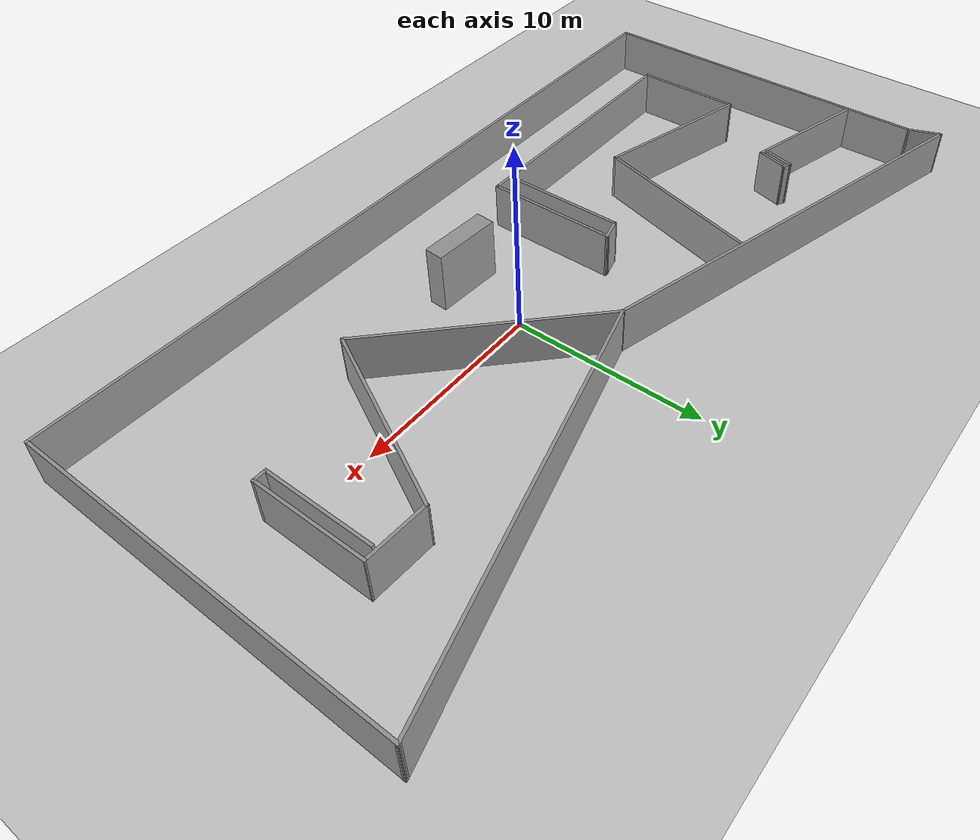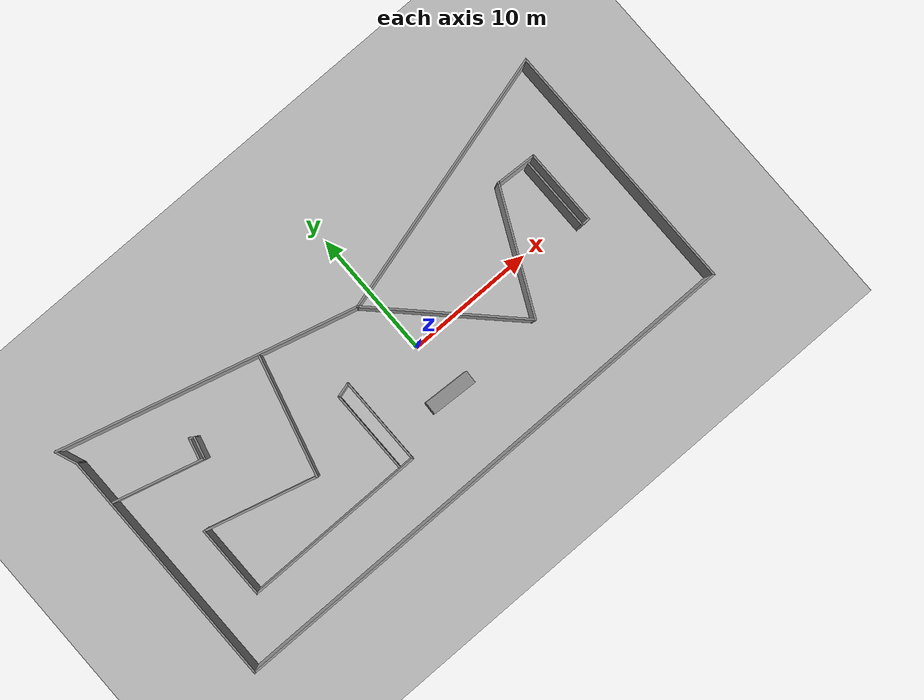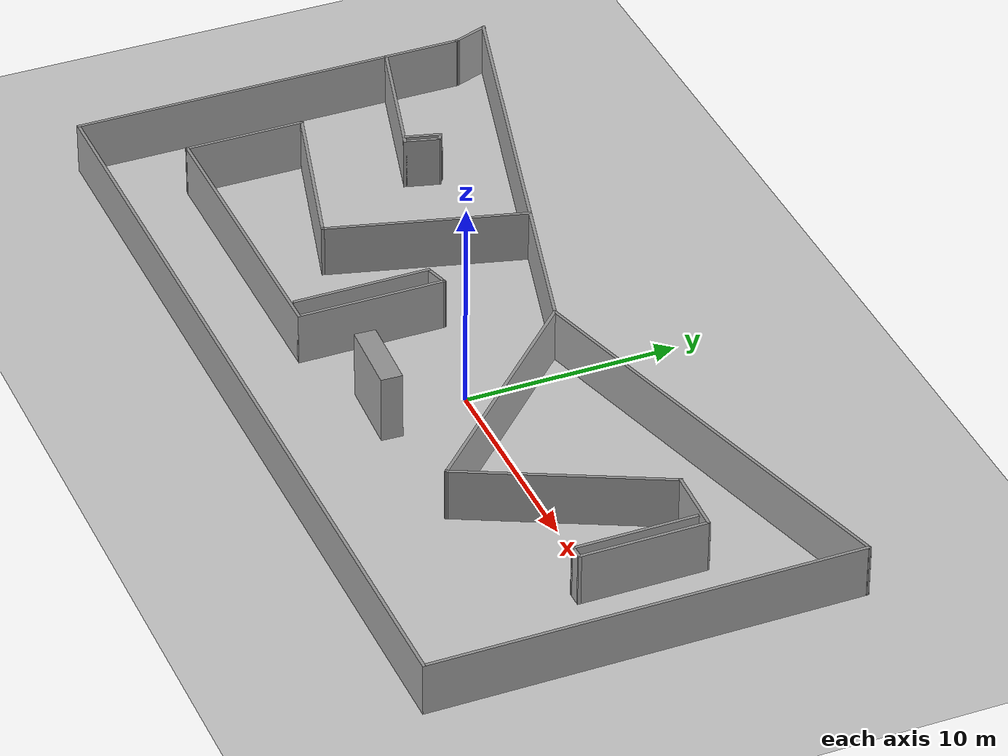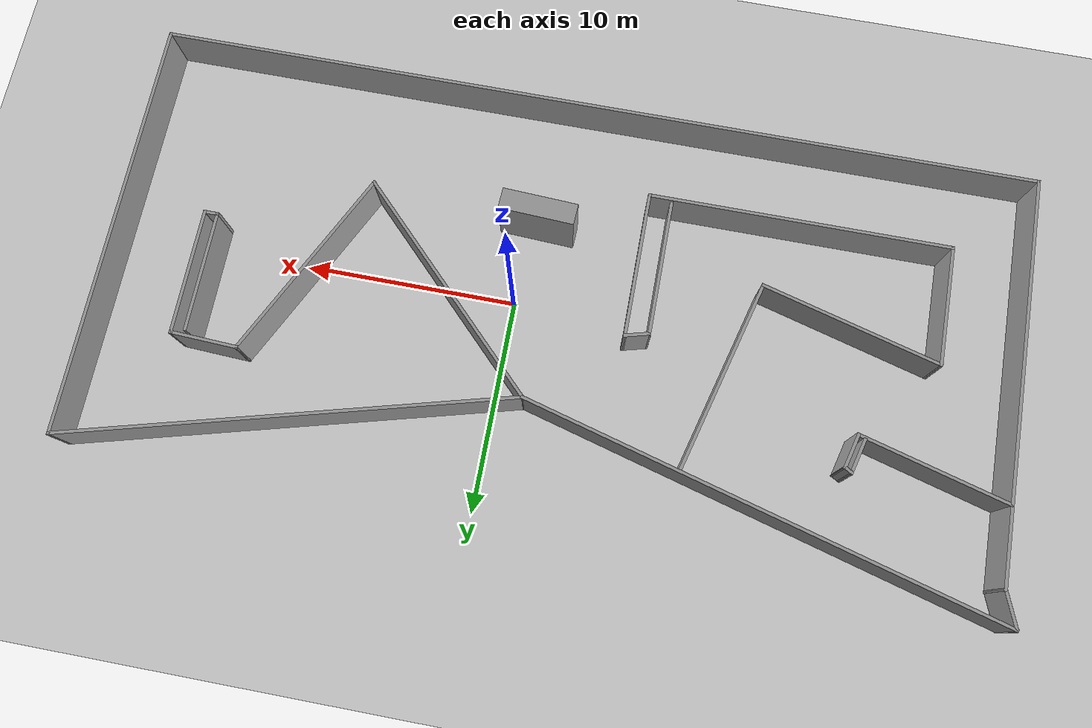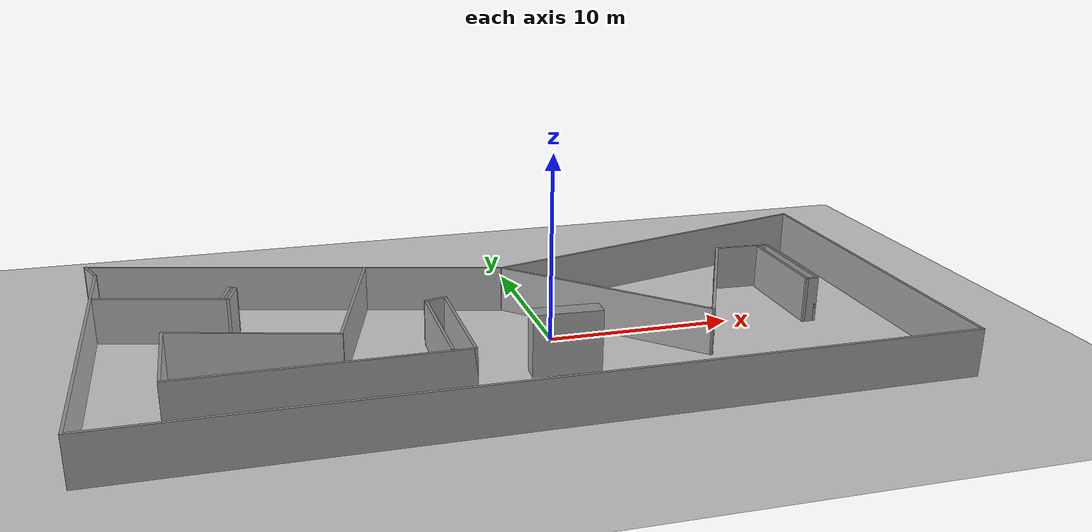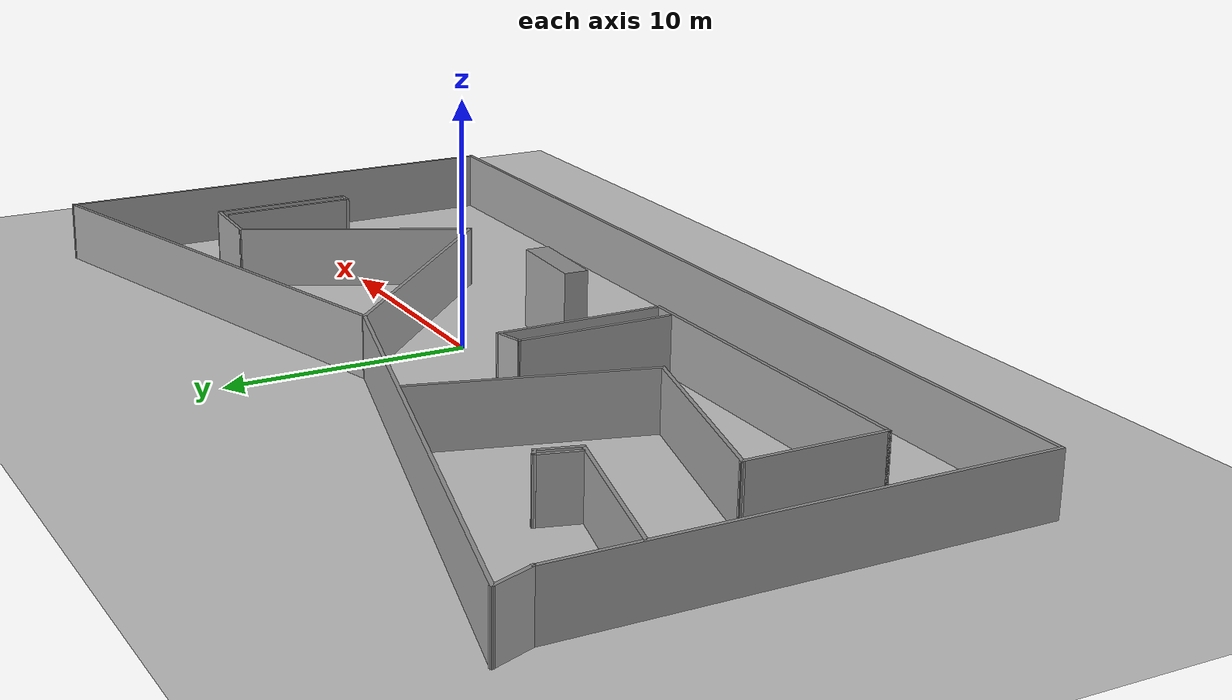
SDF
<sdf version="1.7">
 <world name="default">
  <light name="sun" type="directional">
   <pose>0 0 10 0 -0 0</pose>
   <diffuse>0.8 0.8 0.8 1</diffuse>
   <specular>0.2 0.2 0.2 1</specular>
   <attenuation>
    <range>1000</range>
    <constant>0.9</constant>
    <linear>0.01</linear>
    <quadratic>0.001</quadratic>
   </attenuation>
   <direction>-0.5 0.1 -0.9</direction>
   <spot><inner_angle>0</inner_angle><outer_angle>0</outer_angle><falloff>0</falloff></spot>
  </light>
  <model name="ground_plane">
   <static>1</static>
   <link name="link">
    <collision name="collision">
     <geometry><plane><normal>0 0 1</normal><size>100 100</size></plane></geometry>
     <surface><friction><ode><mu>100</mu><mu2>50</mu2></ode></friction></surface>
    </collision>
    <visual name="visual">
     <cast_shadows>0</cast_shadows>
     <geometry><plane><normal>0 0 1</normal><size>100 100</size></plane></geometry>
     <material>
      <script><uri>file://media/materials/scripts/gazebo.material</uri><name>Gazebo/Grey</name></script>
     </material>
    </visual>
   </link>
  </model>
  <gravity>0 0 -9.8</gravity>
  <magnetic_field>6e-06 2.3e-05 -4.2e-05</magnetic_field>
  <atmosphere type="adiabatic"/>
  <physics type="ode">
   <max_step_size>0.001</max_step_size>
   <real_time_factor>1</real_time_factor>
   <real_time_update_rate>1000</real_time_update_rate>
  </physics>
  <scene><ambient>0.4 0.4 0.4 1</ambient><background>0.7 0.7 0.7 1</background><shadows>1</shadows></scene>
  <spherical_coordinates>
   <surface_model>EARTH_WGS84</surface_model>
   <latitude_deg>0</latitude_deg>
   <longitude_deg>0</longitude_deg>
   <elevation>0</elevation>
   <heading_deg>0</heading_deg>
  </spherical_coordinates>
  <model name="test_house">
   <pose>-2.48412 0.574929 0 0 -0 0</pose>
   <link name="Wall_0">
    <collision name="Wall_0_Collision">
     <geometry><box><size>19 0.15 2.5</size></box></geometry>
     <pose>0 0 1.25 0 -0 0</pose>
    </collision>
    <visual name="Wall_0_Visual">
     <pose>0 0 1.25 0 -0 0</pose>
     <geometry><box><size>19 0.15 2.5</size></box></geometry>
     <material>
      <script><uri>file://media/materials/scripts/gazebo.material</uri><name>Gazebo/Grey</name></script>
      <ambient>1 1 1 1</ambient>
     </material>
     <meta><layer>0</layer></meta>
    </visual>
    <pose>-20.6213 -0.80206 0 0 -0 -1.5708</pose>
   </link>
   <link name="Wall_1">
    <collision name="Wall_1_Collision">
     <geometry><box><size>42 0.15 2.5</size></box></geometry>
     <pose>0 0 1.25 0 -0 0</pose>
    </collision>
    <visual name="Wall_1_Visual">
     <pose>0 0 1.25 0 -0 0</pose>
     <geometry><box><size>42 0.15 2.5</size></box></geometry>
     <material>
      <script><uri>file://media/materials/scripts/gazebo.material</uri><name>Gazebo/Grey</name></script>
      <ambient>1 1 1 1</ambient>
     </material>
     <meta><layer>0</layer></meta>
    </visual>
    <pose>0.30368 -10.2271 0 0 -0 0</pose>
   </link>
   <link name="Wall_10">
    <collision name="Wall_10_Collision">
     <geometry><box><size>9.5 0.15 2.5</size></box></geometry>
     <pose>0 0 1.25 0 -0 0</pose>
    </collision>
    <visual name="Wall_10_Visual">
     <pose>0 0 1.25 0 -0 0</pose>
     <geometry><box><size>9.5 0.15 2.5</size></box></geometry>
     <material>
      <script><uri>file://media/materials/scripts/gazebo.material</uri><name>Gazebo/Grey</name></script>
      <ambient>1 1 1 1</ambient>
     </material>
     <meta><layer>0</layer></meta>
    </visual>
    <pose>-7.48297 1.65347 0 0 -0 -1.8326</pose>
   </link>
   <link name="Wall_11">
    <collision name="Wall_11_Collision">
     <geometry><box><size>8.75 0.15 2.5</size></box></geometry>
     <pose>0 0 1.25 0 -0 0</pose>
    </collision>
    <visual name="Wall_11_Visual">
     <pose>0 0 1.25 0 -0 0</pose>
     <geometry><box><size>8.75 0.15 2.5</size></box></geometry>
     <material>
      <script><uri>file://media/materials/scripts/gazebo.material</uri><name>Gazebo/Grey</name></script>
      <ambient>1 1 1 1</ambient>
     </material>
     <meta><layer>0</layer></meta>
    </visual>
    <pose>-12.8464 -1.74931 0 0 -0 2.87979</pose>
   </link>
   <link name="Wall_12">
    <collision name="Wall_12_Collision">
     <geometry><box><size>5.75 0.15 2.5</size></box></geometry>
     <pose>0 0 1.25 0 -0 0</pose>
    </collision>
    <visual name="Wall_12_Visual">
     <pose>0 0 1.25 0 -0 0</pose>
     <geometry><box><size>5.75 0.15 2.5</size></box></geometry>
     <material>
      <script><uri>file://media/materials/scripts/gazebo.material</uri><name>Gazebo/Grey</name></script>
      <ambient>1 1 1 1</ambient>
     </material>
     <meta><layer>0</layer></meta>
    </visual>
    <pose>-16.9999 -3.43639 0 0 -0 -1.5708</pose>
   </link>
   <link name="Wall_13">
    <collision name="Wall_13_Collision">
     <geometry><box><size>14.25 0.15 2.5</size></box></geometry>
     <pose>0 0 1.25 0 -0 0</pose>
    </collision>
    <visual name="Wall_13_Visual">
     <pose>0 0 1.25 0 -0 0</pose>
     <geometry><box><size>14.25 0.15 2.5</size></box></geometry>
     <material>
      <script><uri>file://media/materials/scripts/gazebo.material</uri><name>Gazebo/Grey</name></script>
      <ambient>1 1 1 1</ambient>
     </material>
     <meta><layer>0</layer></meta>
    </visual>
    <pose>-9.94991 -6.23639 0 0 -0 0</pose>
   </link>
   <link name="Wall_14">
    <collision name="Wall_14_Collision">
     <geometry><box><size>7 0.15 2.5</size></box></geometry>
     <pose>0 0 1.25 0 -0 0</pose>
    </collision>
    <visual name="Wall_14_Visual">
     <pose>0 0 1.25 0 -0 0</pose>
     <geometry><box><size>7 0.15 2.5</size></box></geometry>
     <material>
      <script><uri>file://media/materials/scripts/gazebo.material</uri><name>Gazebo/Grey</name></script>
      <ambient>1 1 1 1</ambient>
     </material>
     <meta><layer>0</layer></meta>
    </visual>
    <pose>-2.89991 -2.81139 0 0 -0 1.5708</pose>
   </link>
   <link name="Wall_16">
    <collision name="Wall_16_Collision">
     <geometry><box><size>12.5 0.15 2.5</size></box></geometry>
     <pose>0 0 1.25 0 -0 0</pose>
    </collision>
    <visual name="Wall_16_Visual">
     <pose>0 0 1.25 0 -0 0</pose>
     <geometry><box><size>12.5 0.15 2.5</size></box></geometry>
     <material>
      <script><uri>file://media/materials/scripts/gazebo.material</uri><name>Gazebo/Grey</name></script>
      <ambient>1 1 1 1</ambient>
     </material>
     <meta><layer>0</layer></meta>
    </visual>
    <pose>5.45551 -0.139822 0 0 -0 -0.785398</pose>
   </link>
   <link name="Wall_17">
    <collision name="Wall_17_Collision">
     <geometry><box><size>9.98271 0.15 2.5</size></box></geometry>
     <pose>0 0 1.25 0 -0 0</pose>
    </collision>
    <visual name="Wall_17_Visual">
     <pose>0 0 1.25 0 -0 0</pose>
     <geometry><box><size>9.98271 0.15 2.5</size></box></geometry>
     <material>
      <script><uri>file://media/materials/scripts/gazebo.material</uri><name>Gazebo/Grey</name></script>
      <ambient>1 1 1 1</ambient>
     </material>
     <meta><layer>0</layer></meta>
    </visual>
    <pose>11.9747 -0.086254 0 0 -0 1.11755</pose>
   </link>
   <link name="Wall_2">
    <collision name="Wall_2_Collision">
     <geometry><box><size>20 0.15 2.5</size></box></geometry>
     <pose>0 0 1.25 0 -0 0</pose>
    </collision>
    <visual name="Wall_2_Visual">
     <pose>0 0 1.25 0 -0 0</pose>
     <geometry><box><size>20 0.15 2.5</size></box></geometry>
     <material>
      <script><uri>file://media/materials/scripts/gazebo.material</uri><name>Gazebo/Grey</name></script>
      <ambient>1 1 1 1</ambient>
     </material>
     <meta><layer>0</layer></meta>
    </visual>
    <pose>21.2287 -0.30206 0 0 -0 1.5708</pose>
   </link>
   <link name="Wall_22">
    <collision name="Wall_22_Collision">
     <geometry><box><size>3.22403 0.15 2.5</size></box></geometry>
     <pose>0 0 1.25 0 -0 0</pose>
    </collision>
    <visual name="Wall_22_Visual">
     <pose>0 0 1.25 0 -0 0</pose>
     <geometry><box><size>3.22403 0.15 2.5</size></box></geometry>
     <material>
      <script><uri>file://media/materials/scripts/gazebo.material</uri><name>Gazebo/Grey</name></script>
      <ambient>1 1 1 1</ambient>
     </material>
     <meta><layer>0</layer></meta>
    </visual>
    <pose>15.6629 4.26391 0 0 -0 -0.045419</pose>
   </link>
   <link name="Wall_23">
    <collision name="Wall_23_Collision">
     <geometry><box><size>6 0.15 2.5</size></box></geometry>
     <pose>0 0 1.25 0 -0 0</pose>
    </collision>
    <visual name="Wall_23_Visual">
     <pose>0 0 1.25 0 -0 0</pose>
     <geometry><box><size>6 0.15 2.5</size></box></geometry>
     <material>
      <script><uri>file://media/materials/scripts/gazebo.material</uri><name>Gazebo/Grey</name></script>
      <ambient>1 1 1 1</ambient>
     </material>
     <meta><layer>0</layer></meta>
    </visual>
    <pose>17.1984 1.26913 0 0 -0 -1.5708</pose>
   </link>
   <link name="Wall_27">
    <collision name="Wall_27_Collision">
     <geometry><box><size>0.75 0.15 2.5</size></box></geometry>
     <pose>0 0 1.25 0 -0 0</pose>
    </collision>
    <visual name="Wall_27_Visual">
     <pose>0 0 1.25 0 -0 0</pose>
     <geometry><box><size>0.75 0.15 2.5</size></box></geometry>
     <material>
      <script><uri>file://media/materials/scripts/gazebo.material</uri><name>Gazebo/Grey</name></script>
      <ambient>1 1 1 1</ambient>
     </material>
     <meta><layer>0</layer></meta>
    </visual>
    <pose>16.8984 -1.65587 0 0 -0 3.14159</pose>
   </link>
   <link name="Wall_28">
    <collision name="Wall_28_Collision">
     <geometry><box><size>5.75 0.15 2.5</size></box></geometry>
     <pose>0 0 1.25 0 -0 0</pose>
    </collision>
    <visual name="Wall_28_Visual">
     <pose>0 0 1.25 0 -0 0</pose>
     <geometry><box><size>5.75 0.15 2.5</size></box></geometry>
     <material>
      <script><uri>file://media/materials/scripts/gazebo.material</uri><name>Gazebo/Grey</name></script>
      <ambient>1 1 1 1</ambient>
     </material>
     <meta><layer>0</layer></meta>
    </visual>
    <pose>16.5984 1.14413 0 0 -0 1.5708</pose>
   </link>
   <link name="Wall_3">
    <collision name="Wall_3_Collision">
     <geometry><box><size>21 0.15 2.5</size></box></geometry>
     <pose>0 0 1.25 0 -0 0</pose>
    </collision>
    <visual name="Wall_3_Visual">
     <pose>0 0 1.25 0 -0 0</pose>
     <geometry><box><size>21 0.15 2.5</size></box></geometry>
     <material>
      <script><uri>file://media/materials/scripts/gazebo.material</uri><name>Gazebo/Grey</name></script>
      <ambient>1 1 1 1</ambient>
     </material>
     <meta><layer>0</layer></meta>
    </visual>
    <pose>11.1589 6.92475 0 0 -0 -2.87979</pose>
   </link>
   <link name="Wall_30">
    <collision name="Wall_30_Collision">
     <geometry><box><size>0.5 0.15 2.5</size></box></geometry>
     <pose>0 0 1.25 0 -0 0</pose>
    </collision>
    <visual name="Wall_30_Visual">
     <pose>0 0 1.25 0 -0 0</pose>
     <geometry><box><size>0.5 0.15 2.5</size></box></geometry>
     <material>
      <script><uri>file://media/materials/scripts/gazebo.material</uri><name>Gazebo/Grey</name></script>
      <ambient>1 1 1 1</ambient>
     </material>
     <meta><layer>0</layer></meta>
    </visual>
    <pose>-13.4817 4.80144 0 0 -0 2.61799</pose>
   </link>
   <link name="Wall_31">
    <collision name="Wall_31_Collision">
     <geometry><box><size>1.75 0.15 2.5</size></box></geometry>
     <pose>0 0 1.25 0 -0 0</pose>
    </collision>
    <visual name="Wall_31_Visual">
     <pose>0 0 1.25 0 -0 0</pose>
     <geometry><box><size>1.75 0.15 2.5</size></box></geometry>
     <material>
      <script><uri>file://media/materials/scripts/gazebo.material</uri><name>Gazebo/Grey</name></script>
      <ambient>1 1 1 1</ambient>
     </material>
     <meta><layer>0</layer></meta>
    </visual>
    <pose>-13.8403 4.1162 0 0 -0 -1.8326</pose>
   </link>
   <link name="Wall_33">
    <collision name="Wall_33_Collision">
     <geometry><box><size>1.25 0.15 2.5</size></box></geometry>
     <pose>0 0 1.25 0 -0 0</pose>
    </collision>
    <visual name="Wall_33_Visual">
     <pose>0 0 1.25 0 -0 0</pose>
     <geometry><box><size>1.25 0.15 2.5</size></box></geometry>
     <material>
      <script><uri>file://media/materials/scripts/gazebo.material</uri><name>Gazebo/Grey</name></script>
      <ambient>1 1 1 1</ambient>
     </material>
     <meta><layer>0</layer></meta>
    </visual>
    <pose>-3.43117 0.47126 0 0 -0 -2.87979</pose>
   </link>
   <link name="Wall_34">
    <collision name="Wall_34_Collision">
     <geometry><box><size>6.5 0.15 2.5</size></box></geometry>
     <pose>0 0 1.25 0 -0 0</pose>
    </collision>
    <visual name="Wall_34_Visual">
     <pose>0 0 1.25 0 -0 0</pose>
     <geometry><box><size>6.5 0.15 2.5</size></box></geometry>
     <material>
      <script><uri>file://media/materials/scripts/gazebo.material</uri><name>Gazebo/Grey</name></script>
      <ambient>1 1 1 1</ambient>
     </material>
     <meta><layer>0</layer></meta>
    </visual>
    <pose>-3.96243 -2.84609 0 0 -0 -1.5708</pose>
   </link>
   <link name="Wall_4">
    <collision name="Wall_4_Collision">
     <geometry><box><size>23.25 0.15 2.5</size></box></geometry>
     <pose>0 0 1.25 0 -0 0</pose>
    </collision>
    <visual name="Wall_4_Visual">
     <pose>0 0 1.25 0 -0 0</pose>
     <geometry><box><size>23.25 0.15 2.5</size></box></geometry>
     <material>
      <script><uri>file://media/materials/scripts/gazebo.material</uri><name>Gazebo/Grey</name></script>
      <ambient>1 1 1 1</ambient>
     </material>
     <meta><layer>0</layer></meta>
    </visual>
    <pose>-10.0673 7.21592 0 0 -0 2.87979</pose>
   </link>
   <link name="Wall_5">
    <collision name="Wall_5_Collision">
     <geometry><box><size>1.84315 0.15 2.5</size></box></geometry>
     <pose>0 0 1.25 0 -0 0</pose>
    </collision>
    <visual name="Wall_5_Visual">
     <pose>0 0 1.25 0 -0 0</pose>
     <geometry><box><size>1.84315 0.15 2.5</size></box></geometry>
     <material>
      <script><uri>file://media/materials/scripts/gazebo.material</uri><name>Gazebo/Grey</name></script>
      <ambient>1 1 1 1</ambient>
     </material>
     <meta><layer>0</layer></meta>
    </visual>
    <pose>-20.9225 9.41411 0 0 -0 -1.20701</pose>
   </link>
   <link name="Wall_7">
    <collision name="Wall_7_Collision">
     <geometry><box><size>7.25 0.15 2.5</size></box></geometry>
     <pose>0 0 1.25 0 -0 0</pose>
    </collision>
    <visual name="Wall_7_Visual">
     <pose>0 0 1.25 0 -0 0</pose>
     <geometry><box><size>7.25 0.15 2.5</size></box></geometry>
     <material>
      <script><uri>file://media/materials/scripts/gazebo.material</uri><name>Gazebo/Grey</name></script>
      <ambient>1 1 1 1</ambient>
     </material>
     <meta><layer>0</layer></meta>
    </visual>
    <pose>-17.1733 4.08727 0 0 -0 -0.261799</pose>
   </link>
   <link name="Wall_8">
    <collision name="Wall_8_Collision">
     <geometry><box><size>1.75 0.15 2.5</size></box></geometry>
     <pose>0 0 1.25 0 -0 0</pose>
    </collision>
    <visual name="Wall_8_Visual">
     <pose>0 0 1.25 0 -0 0</pose>
     <geometry><box><size>1.75 0.15 2.5</size></box></geometry>
     <material>
      <script><uri>file://media/materials/scripts/gazebo.material</uri><name>Gazebo/Grey</name></script>
      <ambient>1 1 1 1</ambient>
     </material>
     <meta><layer>0</layer></meta>
    </visual>
    <pose>-13.5372 3.9412 0 0 -0 1.309</pose>
   </link>
   <static>1</static>
  </model>
  <model name="unit_box">
   <pose>-0.454666 -3.90011 1.62112 1e-06 -0 1.522</pose>
   <link name="link">
    <inertial>
     <mass>1</mass>
     <inertia>
      <ixx>0.166667</ixx>
      <ixy>0</ixy>
      <ixz>0</ixz>
      <iyy>0.166667</iyy>
      <iyz>0</iyz>
      <izz>0.166667</izz>
     </inertia>
    </inertial>
    <collision name="collision"><geometry><box><size>1 3.54708 3.24225</size></box></geometry></collision>
    <visual name="visual">
     <geometry><box><size>1 3.54708 3.24225</size></box></geometry>
     <material>
      <script><name>Gazebo/Grey</name><uri>file://media/materials/scripts/gazebo.material</uri></script>
     </material>
    </visual>
   </link>
  </model>
 </world>
</sdf>
